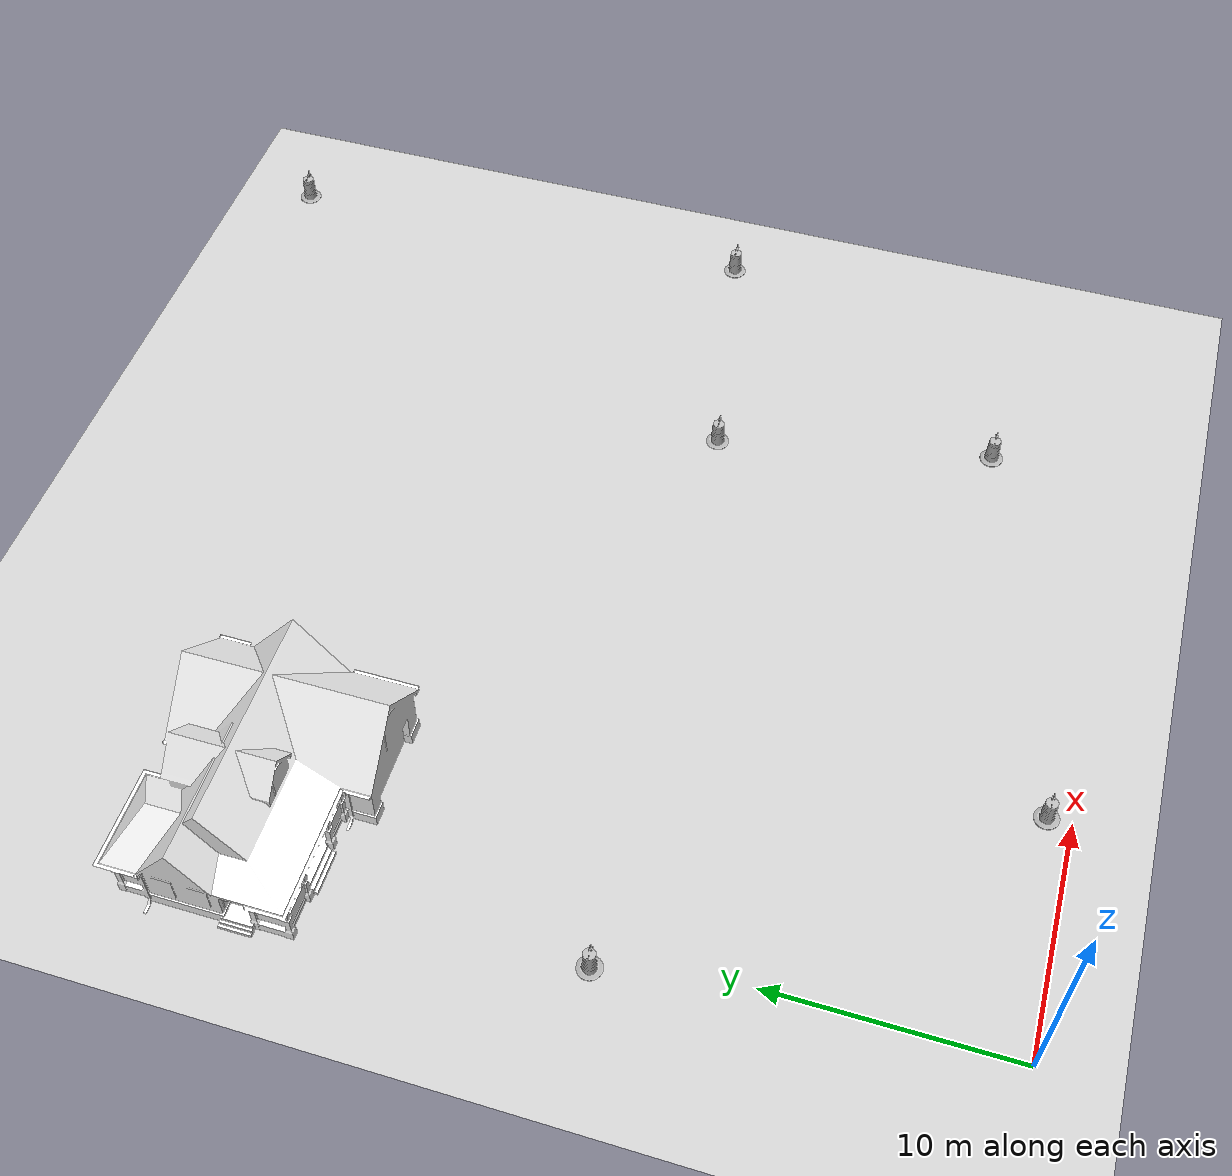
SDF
<sdf version="1.4">
 <world name="default">
  <model name="ground_plane">
   <static>1</static>
   <link name="link">
    <collision name="collision">
     <geometry><plane><normal>0 0 1</normal><size>100 100</size></plane></geometry>
     <surface><friction><ode><mu>100</mu><mu2>50</mu2></ode></friction></surface>
    </collision>
    <visual name="visual">
     <cast_shadows>0</cast_shadows>
     <geometry><plane><normal>0 0 1</normal><size>100 100</size></plane></geometry>
     <material>
      <script><uri>file://media/materials/scripts/gazebo.material</uri><name>Gazebo/Grey</name></script>
     </material>
    </visual>
    <velocity_decay><linear>0</linear><angular>0</angular></velocity_decay>
   </link>
  </model>
  <light name="sun" type="directional">
   <pose>0 0 10 0 -0 0</pose>
   <diffuse>0.8 0.8 0.8 1</diffuse>
   <specular>0.2 0.2 0.2 1</specular>
   <attenuation>
    <range>1000</range>
    <constant>0.9</constant>
    <linear>0.01</linear>
    <quadratic>0.001</quadratic>
   </attenuation>
   <direction>-0.5 0.1 -0.9</direction>
  </light>
  <physics type="ode">
   <max_step_size>0.001</max_step_size>
   <real_time_factor>1</real_time_factor>
   <real_time_update_rate>1000</real_time_update_rate>
   <gravity>0 0 -9.8</gravity>
  </physics>
  <scene><ambient>0.4 0.4 0.4 1</ambient><background>0.7 0.7 0.7 1</background><shadows>1</shadows></scene>
  <spherical_coordinates>
   <surface_model>EARTH_WGS84</surface_model>
   <latitude_deg>0</latitude_deg>
   <longitude_deg>0</longitude_deg>
   <elevation>0</elevation>
   <heading_deg>0</heading_deg>
  </spherical_coordinates>
  <model name="House 1">
   <static>1</static>
   <link name="link">
    <collision name="collision">
     <geometry><mesh><uri>model://house_1/meshes/house_1.dae</uri></mesh></geometry>
    </collision>
    <visual name="visual">
     <geometry><mesh><uri>model://house_1/meshes/house_1.dae</uri></mesh></geometry>
     <material>
      <script>
       <uri>model://house_1/materials/scripts</uri>
       <uri>model://house_1/materials/textures</uri>
       <name>House_1/Diffuse</name>
      </script>
      <shader type="normal_map_object_space"><normal_map>House_1_Normal.png</normal_map></shader>
     </material>
    </visual>
    <velocity_decay><linear>0</linear><angular>0</angular></velocity_decay>
   </link>
   <pose>2 30 0 0 -0 0</pose>
  </model>
  <model name="Construction Barrel_4">
   <link name="link">
    <inertial>
     <pose>0 0 0.4 0 -0 0</pose>
     <mass>500</mass>
     <inertia><ixx>51.2096</ixx><iyy>51.2096</iyy><izz>25</izz><ixy>0</ixy><ixz>0</ixz><iyz>0</iyz></inertia>
    </inertial>
    <collision name="collision">
     <geometry><mesh><uri>model://construction_barrel/meshes/construction_barrel.dae</uri></mesh></geometry>
    </collision>
    <visual name="visual">
     <geometry><mesh><uri>model://construction_barrel/meshes/construction_barrel.dae</uri></mesh></geometry>
    </visual>
    <velocity_decay><linear>0</linear><angular>0</angular></velocity_decay>
   </link>
   <pose>27.5748 6.00079 -0 0 -0 -0.001426</pose>
   <static>0</static>
  </model>
  <model name="Construction Barrel_5">
   <link name="link">
    <inertial>
     <pose>0 0 0.4 0 -0 0</pose>
     <mass>500</mass>
     <inertia><ixx>51.2096</ixx><iyy>51.2096</iyy><izz>25</izz><ixy>0</ixy><ixz>0</ixz><iyz>0</iyz></inertia>
    </inertial>
    <collision name="collision">
     <geometry><mesh><uri>model://construction_barrel/meshes/construction_barrel.dae</uri></mesh></geometry>
    </collision>
    <visual name="visual">
     <geometry><mesh><uri>model://construction_barrel/meshes/construction_barrel.dae</uri></mesh></geometry>
    </visual>
    <velocity_decay><linear>0</linear><angular>0</angular></velocity_decay>
   </link>
   <pose>35.9999 20.0008 -0 0 -0 -0.001354</pose>
   <static>0</static>
  </model>
  <model name="Construction Barrel_6">
   <link name="link">
    <inertial>
     <pose>0 0 0.4 0 -0 0</pose>
     <mass>500</mass>
     <inertia><ixx>51.2096</ixx><iyy>51.2096</iyy><izz>25</izz><ixy>0</ixy><ixz>0</ixz><iyz>0</iyz></inertia>
    </inertial>
    <collision name="collision">
     <geometry><mesh><uri>model://construction_barrel/meshes/construction_barrel.dae</uri></mesh></geometry>
    </collision>
    <visual name="visual">
     <geometry><mesh><uri>model://construction_barrel/meshes/construction_barrel.dae</uri></mesh></geometry>
    </visual>
    <velocity_decay><linear>0</linear><angular>0</angular></velocity_decay>
   </link>
   <pose>-1.00009 16.0007 0 -0 -0 -0.001314</pose>
   <static>0</static>
  </model>
  <model name="Construction Barrel_7">
   <link name="link">
    <inertial>
     <pose>0 0 0.4 0 -0 0</pose>
     <mass>500</mass>
     <inertia><ixx>51.2096</ixx><iyy>51.2096</iyy><izz>25</izz><ixy>0</ixy><ixz>0</ixz><iyz>0</iyz></inertia>
    </inertial>
    <collision name="collision">
     <geometry><mesh><uri>model://construction_barrel/meshes/construction_barrel.dae</uri></mesh></geometry>
    </collision>
    <visual name="visual">
     <geometry><mesh><uri>model://construction_barrel/meshes/construction_barrel.dae</uri></mesh></geometry>
    </visual>
    <velocity_decay><linear>0</linear><angular>0</angular></velocity_decay>
   </link>
   <pose>34.9999 42.0007 -3e-06 -6e-06 5e-06 -0.00124</pose>
   <static>0</static>
  </model>
  <model name="Construction Barrel_8">
   <link name="link">
    <inertial>
     <pose>0 0 0.4 0 -0 0</pose>
     <mass>500</mass>
     <inertia><ixx>51.2096</ixx><iyy>51.2096</iyy><izz>25</izz><ixy>0</ixy><ixz>0</ixz><iyz>0</iyz></inertia>
    </inertial>
    <collision name="collision">
     <geometry><mesh><uri>model://construction_barrel/meshes/construction_barrel.dae</uri></mesh></geometry>
    </collision>
    <visual name="visual">
     <geometry><mesh><uri>model://construction_barrel/meshes/construction_barrel.dae</uri></mesh></geometry>
    </visual>
    <velocity_decay><linear>0</linear><angular>0</angular></velocity_decay>
   </link>
   <pose>9.99992 1.00065 -3e-06 -6e-06 5e-06 -0.001151</pose>
   <static>0</static>
  </model>
  <model name="Construction Barrel_9">
   <link name="link">
    <inertial>
     <pose>0 0 0.4 0 -0 0</pose>
     <mass>500</mass>
     <inertia><ixx>51.2096</ixx><iyy>51.2096</iyy><izz>25</izz><ixy>0</ixy><ixz>0</ixz><iyz>0</iyz></inertia>
    </inertial>
    <collision name="collision">
     <geometry><mesh><uri>model://construction_barrel/meshes/construction_barrel.dae</uri></mesh></geometry>
    </collision>
    <visual name="visual">
     <geometry><mesh><uri>model://construction_barrel/meshes/construction_barrel.dae</uri></mesh></geometry>
    </visual>
    <velocity_decay><linear>0</linear><angular>0</angular></velocity_decay>
   </link>
   <pose>24.9999 18.0006 -3e-06 -6e-06 5e-06 -0.001114</pose>
   <static>0</static>
  </model>
 </world>
</sdf>
